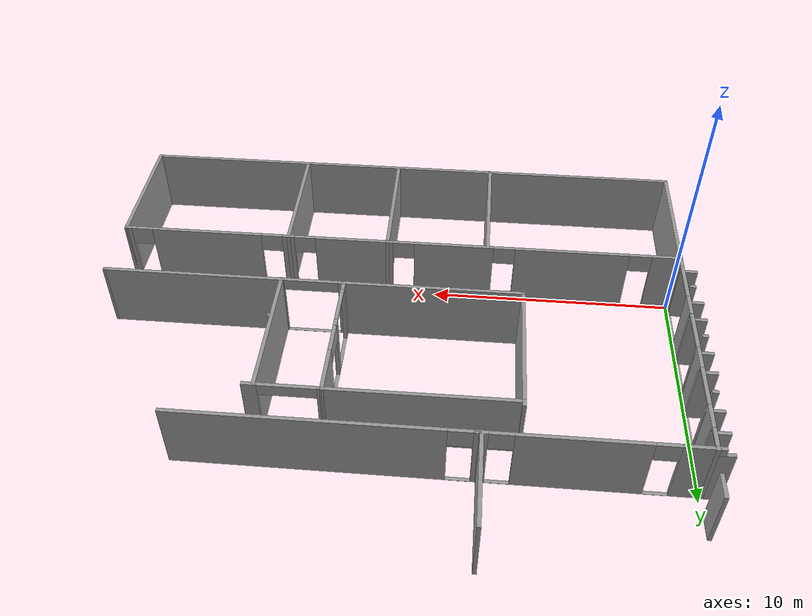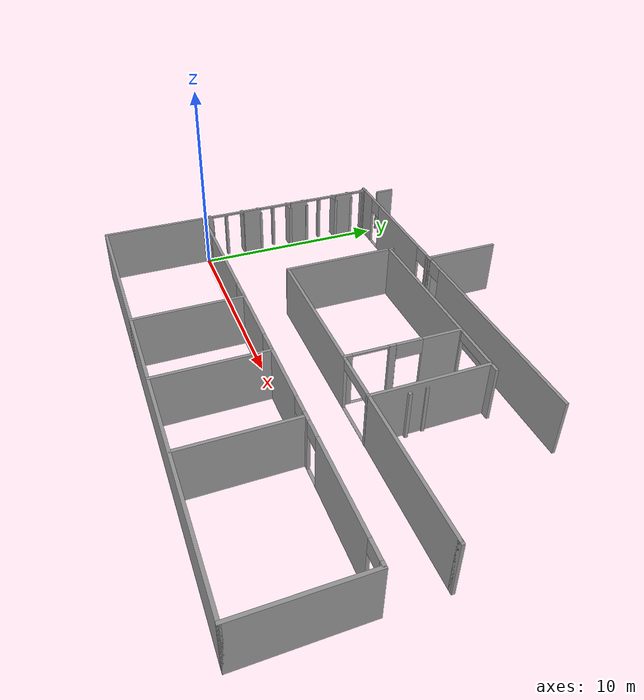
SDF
<sdf version="1.6">
 <world name="default">
  <light name="sun" type="directional">
   <pose>0 0 10 0 -0 0</pose>
   <diffuse>0.8 0.8 0.8 1</diffuse>
   <specular>0.2 0.2 0.2 1</specular>
   <attenuation>
    <range>1000</range>
    <constant>0.9</constant>
    <linear>0.01</linear>
    <quadratic>0.001</quadratic>
   </attenuation>
   <direction>-0.5 0.1 -0.9</direction>
  </light>
  <gravity>0 0 -9.8</gravity>
  <magnetic_field>6e-06 2.3e-05 -4.2e-05</magnetic_field>
  <atmosphere type="adiabatic"/>
  <physics name="default_physics" default="0" type="ode">
   <max_step_size>0.001</max_step_size>
   <real_time_factor>1</real_time_factor>
   <real_time_update_rate>1000</real_time_update_rate>
  </physics>
  <scene><ambient>0.4 0.4 0.4 1</ambient><background>0.7 0.7 0.7 1</background><shadows>1</shadows></scene>
  <audio><device>default</device></audio>
  <spherical_coordinates>
   <surface_model>EARTH_WGS84</surface_model>
   <latitude_deg>0</latitude_deg>
   <longitude_deg>0</longitude_deg>
   <elevation>0</elevation>
   <heading_deg>0</heading_deg>
  </spherical_coordinates>
  <model name="lee-lw">
   <pose>11.3055 4.0077 0 0 -0 0</pose>
   <link name="Wall_0">
    <pose>0.272489 -4.09612 0 0 -0 0</pose>
    <visual name="Wall_0_Visual_0">
     <pose>-11.1322 0 1.4 0 -0 0</pose>
     <geometry><box><size>1.23559 0.15 2.8</size></box></geometry>
     <material>
      <script><uri>file://media/materials/scripts/gazebo.material</uri><name>Gazebo/Grey</name></script>
      <ambient>1 1 1 1</ambient>
     </material>
     <meta><layer>0</layer></meta>
    </visual>
    <collision name="Wall_0_Collision_0">
     <geometry><box><size>1.23559 0.15 2.8</size></box></geometry>
     <pose>-11.1322 0 1.4 0 -0 0</pose>
    </collision>
    <visual name="Wall_0_Visual_1">
     <pose>-7.24619 0 1.4 0 -0 0</pose>
     <geometry><box><size>4.72044 0.15 2.8</size></box></geometry>
     <material>
      <script><uri>file://media/materials/scripts/gazebo.material</uri><name>Gazebo/Grey</name></script>
      <ambient>1 1 1 1</ambient>
     </material>
     <meta><layer>0</layer></meta>
    </visual>
    <collision name="Wall_0_Collision_1">
     <geometry><box><size>4.72044 0.15 2.8</size></box></geometry>
     <pose>-7.24619 0 1.4 0 -0 0</pose>
    </collision>
    <visual name="Wall_0_Visual_2">
     <pose>-2.32879 0 1.4 0 -0 0</pose>
     <geometry><box><size>3.31436 0.15 2.8</size></box></geometry>
     <material>
      <script><uri>file://media/materials/scripts/gazebo.material</uri><name>Gazebo/Grey</name></script>
      <ambient>1 1 1 1</ambient>
     </material>
     <meta><layer>0</layer></meta>
    </visual>
    <collision name="Wall_0_Collision_2">
     <geometry><box><size>3.31436 0.15 2.8</size></box></geometry>
     <pose>-2.32879 0 1.4 0 -0 0</pose>
    </collision>
    <visual name="Wall_0_Visual_3">
     <pose>1.87474 0 1.4 0 -0 0</pose>
     <geometry><box><size>3.2927 0.15 2.8</size></box></geometry>
     <material>
      <script><uri>file://media/materials/scripts/gazebo.material</uri><name>Gazebo/Grey</name></script>
      <ambient>1 1 1 1</ambient>
     </material>
     <meta><layer>0</layer></meta>
    </visual>
    <collision name="Wall_0_Collision_3">
     <geometry><box><size>3.2927 0.15 2.8</size></box></geometry>
     <pose>1.87474 0 1.4 0 -0 0</pose>
    </collision>
    <visual name="Wall_0_Visual_4">
     <pose>4.68143 0 1.4 0 -0 0</pose>
     <geometry><box><size>0.520668 0.15 2.8</size></box></geometry>
     <material>
      <script><uri>file://media/materials/scripts/gazebo.material</uri><name>Gazebo/Grey</name></script>
      <ambient>1 1 1 1</ambient>
     </material>
     <meta><layer>0</layer></meta>
    </visual>
    <collision name="Wall_0_Collision_4">
     <geometry><box><size>0.520668 0.15 2.8</size></box></geometry>
     <pose>4.68143 0 1.4 0 -0 0</pose>
    </collision>
    <visual name="Wall_0_Visual_5">
     <pose>8.19152 0 1.4 0 -0 0</pose>
     <geometry><box><size>4.69951 0.15 2.8</size></box></geometry>
     <material>
      <script><uri>file://media/materials/scripts/gazebo.material</uri><name>Gazebo/Grey</name></script>
      <ambient>1 1 1 1</ambient>
     </material>
     <meta><layer>0</layer></meta>
    </visual>
    <collision name="Wall_0_Collision_5">
     <geometry><box><size>4.69951 0.15 2.8</size></box></geometry>
     <pose>8.19152 0 1.4 0 -0 0</pose>
    </collision>
    <visual name="Wall_0_Visual_6">
     <pose>11.5956 0 1.4 0 -0 0</pose>
     <geometry><box><size>0.308725 0.15 2.8</size></box></geometry>
     <material>
      <script><uri>file://media/materials/scripts/gazebo.material</uri><name>Gazebo/Grey</name></script>
      <ambient>1 1 1 1</ambient>
     </material>
     <meta><layer>0</layer></meta>
    </visual>
    <collision name="Wall_0_Collision_6">
     <geometry><box><size>0.308725 0.15 2.8</size></box></geometry>
     <pose>11.5956 0 1.4 0 -0 0</pose>
    </collision>
    <visual name="Wall_0_Visual_7">
     <pose>-10.0604 0 0 0 -0 0</pose>
     <geometry><box><size>0.908 0.15 0.01</size></box></geometry>
     <material>
      <script><uri>file://media/materials/scripts/gazebo.material</uri><name>Gazebo/Grey</name></script>
      <ambient>1 1 1 1</ambient>
     </material>
     <meta><layer>0</layer></meta>
    </visual>
    <collision name="Wall_0_Collision_7">
     <geometry><box><size>0.908 0.15 0.01</size></box></geometry>
     <pose>-10.0604 0 0 0 -0 0</pose>
    </collision>
    <visual name="Wall_0_Visual_8">
     <pose>-4.43597 0 0 0 -0 0</pose>
     <geometry><box><size>0.9 0.15 0.01</size></box></geometry>
     <material>
      <script><uri>file://media/materials/scripts/gazebo.material</uri><name>Gazebo/Grey</name></script>
      <ambient>1 1 1 1</ambient>
     </material>
     <meta><layer>0</layer></meta>
    </visual>
    <collision name="Wall_0_Collision_8">
     <geometry><box><size>0.9 0.15 0.01</size></box></geometry>
     <pose>-4.43597 0 0 0 -0 0</pose>
    </collision>
    <visual name="Wall_0_Visual_9">
     <pose>-0.221608 0 0 0 -0 0</pose>
     <geometry><box><size>0.9 0.15 0.01</size></box></geometry>
     <material>
      <script><uri>file://media/materials/scripts/gazebo.material</uri><name>Gazebo/Grey</name></script>
      <ambient>1 1 1 1</ambient>
     </material>
     <meta><layer>0</layer></meta>
    </visual>
    <collision name="Wall_0_Collision_9">
     <geometry><box><size>0.9 0.15 0.01</size></box></geometry>
     <pose>-0.221608 0 0 0 -0 0</pose>
    </collision>
    <visual name="Wall_0_Visual_10">
     <pose>3.9711 0 0 0 -0 0</pose>
     <geometry><box><size>0.9 0.15 0.01</size></box></geometry>
     <material>
      <script><uri>file://media/materials/scripts/gazebo.material</uri><name>Gazebo/Grey</name></script>
      <ambient>1 1 1 1</ambient>
     </material>
     <meta><layer>0</layer></meta>
    </visual>
    <collision name="Wall_0_Collision_10">
     <geometry><box><size>0.9 0.15 0.01</size></box></geometry>
     <pose>3.9711 0 0 0 -0 0</pose>
    </collision>
    <visual name="Wall_0_Visual_11">
     <pose>5.39176 0 0 0 -0 0</pose>
     <geometry><box><size>0.9 0.15 0.01</size></box></geometry>
     <material>
      <script><uri>file://media/materials/scripts/gazebo.material</uri><name>Gazebo/Grey</name></script>
      <ambient>1 1 1 1</ambient>
     </material>
     <meta><layer>0</layer></meta>
    </visual>
    <collision name="Wall_0_Collision_11">
     <geometry><box><size>0.9 0.15 0.01</size></box></geometry>
     <pose>5.39176 0 0 0 -0 0</pose>
    </collision>
    <visual name="Wall_0_Visual_12">
     <pose>10.9913 0 0 0 -0 0</pose>
     <geometry><box><size>0.9 0.15 0.01</size></box></geometry>
     <material>
      <script><uri>file://media/materials/scripts/gazebo.material</uri><name>Gazebo/Grey</name></script>
      <ambient>1 1 1 1</ambient>
     </material>
     <meta><layer>0</layer></meta>
    </visual>
    <collision name="Wall_0_Collision_12">
     <geometry><box><size>0.9 0.15 0.01</size></box></geometry>
     <pose>10.9913 0 0 0 -0 0</pose>
    </collision>
    <visual name="Wall_0_Visual_13">
     <pose>-10.0604 0 2.4 0 -0 0</pose>
     <geometry><box><size>0.908 0.15 0.8</size></box></geometry>
     <material>
      <script><uri>file://media/materials/scripts/gazebo.material</uri><name>Gazebo/Grey</name></script>
      <ambient>1 1 1 1</ambient>
     </material>
     <meta><layer>0</layer></meta>
    </visual>
    <collision name="Wall_0_Collision_13">
     <geometry><box><size>0.908 0.15 0.8</size></box></geometry>
     <pose>-10.0604 0 2.4 0 -0 0</pose>
    </collision>
    <visual name="Wall_0_Visual_14">
     <pose>-4.43597 0 2.4 0 -0 0</pose>
     <geometry><box><size>0.9 0.15 0.8</size></box></geometry>
     <material>
      <script><uri>file://media/materials/scripts/gazebo.material</uri><name>Gazebo/Grey</name></script>
      <ambient>1 1 1 1</ambient>
     </material>
     <meta><layer>0</layer></meta>
    </visual>
    <collision name="Wall_0_Collision_14">
     <geometry><box><size>0.9 0.15 0.8</size></box></geometry>
     <pose>-4.43597 0 2.4 0 -0 0</pose>
    </collision>
    <visual name="Wall_0_Visual_15">
     <pose>-0.221608 0 2.4 0 -0 0</pose>
     <geometry><box><size>0.9 0.15 0.8</size></box></geometry>
     <material>
      <script><uri>file://media/materials/scripts/gazebo.material</uri><name>Gazebo/Grey</name></script>
      <ambient>1 1 1 1</ambient>
     </material>
     <meta><layer>0</layer></meta>
    </visual>
    <collision name="Wall_0_Collision_15">
     <geometry><box><size>0.9 0.15 0.8</size></box></geometry>
     <pose>-0.221608 0 2.4 0 -0 0</pose>
    </collision>
    <visual name="Wall_0_Visual_16">
     <pose>3.9711 0 2.4 0 -0 0</pose>
     <geometry><box><size>0.9 0.15 0.8</size></box></geometry>
     <material>
      <script><uri>file://media/materials/scripts/gazebo.material</uri><name>Gazebo/Grey</name></script>
      <ambient>1 1 1 1</ambient>
     </material>
     <meta><layer>0</layer></meta>
    </visual>
    <collision name="Wall_0_Collision_16">
     <geometry><box><size>0.9 0.15 0.8</size></box></geometry>
     <pose>3.9711 0 2.4 0 -0 0</pose>
    </collision>
    <visual name="Wall_0_Visual_17">
     <pose>5.39176 0 2.4 0 -0 0</pose>
     <geometry><box><size>0.9 0.15 0.8</size></box></geometry>
     <material>
      <script><uri>file://media/materials/scripts/gazebo.material</uri><name>Gazebo/Grey</name></script>
      <ambient>1 1 1 1</ambient>
     </material>
     <meta><layer>0</layer></meta>
    </visual>
    <collision name="Wall_0_Collision_17">
     <geometry><box><size>0.9 0.15 0.8</size></box></geometry>
     <pose>5.39176 0 2.4 0 -0 0</pose>
    </collision>
    <visual name="Wall_0_Visual_18">
     <pose>10.9913 0 2.4 0 -0 0</pose>
     <geometry><box><size>0.9 0.15 0.8</size></box></geometry>
     <material>
      <script><uri>file://media/materials/scripts/gazebo.material</uri><name>Gazebo/Grey</name></script>
      <ambient>1 1 1 1</ambient>
     </material>
     <meta><layer>0</layer></meta>
    </visual>
    <collision name="Wall_0_Collision_18">
     <geometry><box><size>0.9 0.15 0.8</size></box></geometry>
     <pose>10.9913 0 2.4 0 -0 0</pose>
    </collision>
   </link>
   <link name="Wall_1">
    <collision name="Wall_1_Collision">
     <geometry><box><size>5.5 0.15 2.8</size></box></geometry>
     <pose>0 0 1.4 0 -0 0</pose>
    </collision>
    <visual name="Wall_1_Visual">
     <pose>0 0 1.4 0 -0 0</pose>
     <geometry><box><size>5.5 0.15 2.8</size></box></geometry>
     <material>
      <script><uri>file://media/materials/scripts/gazebo.material</uri><name>Gazebo/Grey</name></script>
      <ambient>1 1 1 1</ambient>
     </material>
     <meta><layer>0</layer></meta>
    </visual>
    <pose>11.9475 -6.77112 0 0 -0 -1.5708</pose>
   </link>
   <link name="Wall_10">
    <collision name="Wall_10_Collision">
     <geometry><box><size>0.309462 0.15 2.8</size></box></geometry>
     <pose>0 0 1.4 0 -0 0</pose>
    </collision>
    <visual name="Wall_10_Visual">
     <pose>0 0 1.4 0 -0 0</pose>
     <geometry><box><size>0.309462 0.15 2.8</size></box></geometry>
     <material>
      <script><uri>file://media/materials/scripts/gazebo.material</uri><name>Gazebo/Grey</name></script>
      <ambient>1 1 1 1</ambient>
     </material>
     <meta><layer>0</layer></meta>
    </visual>
    <pose>-4.93701 4.29538 0 0 -0 1.57709</pose>
   </link>
   <link name="Wall_12">
    <collision name="Wall_12_Collision">
     <geometry><box><size>5.5 0.15 2.8</size></box></geometry>
     <pose>0 0 1.4 0 -0 0</pose>
    </collision>
    <visual name="Wall_12_Visual">
     <pose>0 0 1.4 0 -0 0</pose>
     <geometry><box><size>5.5 0.15 2.8</size></box></geometry>
     <material>
      <script><uri>file://media/materials/scripts/gazebo.material</uri><name>Gazebo/Grey</name></script>
      <ambient>1 1 1 1</ambient>
     </material>
     <meta><layer>0</layer></meta>
    </visual>
    <pose>4.94049 -6.76612 0 0 -0 -1.5708</pose>
   </link>
   <link name="Wall_14">
    <collision name="Wall_14_Collision">
     <geometry><box><size>5.5 0.15 2.8</size></box></geometry>
     <pose>0 0 1.4 0 -0 0</pose>
    </collision>
    <visual name="Wall_14_Visual">
     <pose>0 0 1.4 0 -0 0</pose>
     <geometry><box><size>5.5 0.15 2.8</size></box></geometry>
     <material>
      <script><uri>file://media/materials/scripts/gazebo.material</uri><name>Gazebo/Grey</name></script>
      <ambient>1 1 1 1</ambient>
     </material>
     <meta><layer>0</layer></meta>
    </visual>
    <pose>0.733489 -6.77012 0 0 -0 -1.5708</pose>
   </link>
   <link name="Wall_16">
    <collision name="Wall_16_Collision">
     <geometry><box><size>5.5 0.15 2.8</size></box></geometry>
     <pose>0 0 1.4 0 -0 0</pose>
    </collision>
    <visual name="Wall_16_Visual">
     <pose>0 0 1.4 0 -0 0</pose>
     <geometry><box><size>5.5 0.15 2.8</size></box></geometry>
     <material>
      <script><uri>file://media/materials/scripts/gazebo.material</uri><name>Gazebo/Grey</name></script>
      <ambient>1 1 1 1</ambient>
     </material>
     <meta><layer>0</layer></meta>
    </visual>
    <pose>-3.46851 -6.77712 0 0 -0 -1.5708</pose>
   </link>
   <link name="Wall_26">
    <pose>-7.47651 5.73288 0 0 -0 0</pose>
    <visual name="Wall_26_Visual_0">
     <pose>-3.5069 0 1.4 0 -0 0</pose>
     <geometry><box><size>1.4862 0.15 2.8</size></box></geometry>
     <material>
      <script><uri>file://media/materials/scripts/gazebo.material</uri><name>Gazebo/Grey</name></script>
      <ambient>1 1 1 1</ambient>
     </material>
     <meta><layer>0</layer></meta>
    </visual>
    <collision name="Wall_26_Collision_0">
     <geometry><box><size>1.4862 0.15 2.8</size></box></geometry>
     <pose>-3.5069 0 1.4 0 -0 0</pose>
    </collision>
    <visual name="Wall_26_Visual_1">
     <pose>0.503557 0 1.4 0 -0 0</pose>
     <geometry><box><size>4.73471 0.15 2.8</size></box></geometry>
     <material>
      <script><uri>file://media/materials/scripts/gazebo.material</uri><name>Gazebo/Grey</name></script>
      <ambient>1 1 1 1</ambient>
     </material>
     <meta><layer>0</layer></meta>
    </visual>
    <collision name="Wall_26_Collision_1">
     <geometry><box><size>4.73471 0.15 2.8</size></box></geometry>
     <pose>0.503557 0 1.4 0 -0 0</pose>
    </collision>
    <visual name="Wall_26_Visual_2">
     <pose>4.01046 0 1.4 0 -0 0</pose>
     <geometry><box><size>0.479087 0.15 2.8</size></box></geometry>
     <material>
      <script><uri>file://media/materials/scripts/gazebo.material</uri><name>Gazebo/Grey</name></script>
      <ambient>1 1 1 1</ambient>
     </material>
     <meta><layer>0</layer></meta>
    </visual>
    <collision name="Wall_26_Collision_2">
     <geometry><box><size>0.479087 0.15 2.8</size></box></geometry>
     <pose>4.01046 0 1.4 0 -0 0</pose>
    </collision>
    <visual name="Wall_26_Visual_3">
     <pose>-2.3138 0 0 0 -0 0</pose>
     <geometry><box><size>0.9 0.15 0.01</size></box></geometry>
     <material>
      <script><uri>file://media/materials/scripts/gazebo.material</uri><name>Gazebo/Grey</name></script>
      <ambient>1 1 1 1</ambient>
     </material>
     <meta><layer>0</layer></meta>
    </visual>
    <collision name="Wall_26_Collision_3">
     <geometry><box><size>0.9 0.15 0.01</size></box></geometry>
     <pose>-2.3138 0 0 0 -0 0</pose>
    </collision>
    <visual name="Wall_26_Visual_4">
     <pose>3.32091 0 0 0 -0 0</pose>
     <geometry><box><size>0.9 0.15 0.01</size></box></geometry>
     <material>
      <script><uri>file://media/materials/scripts/gazebo.material</uri><name>Gazebo/Grey</name></script>
      <ambient>1 1 1 1</ambient>
     </material>
     <meta><layer>0</layer></meta>
    </visual>
    <collision name="Wall_26_Collision_4">
     <geometry><box><size>0.9 0.15 0.01</size></box></geometry>
     <pose>3.32091 0 0 0 -0 0</pose>
    </collision>
    <visual name="Wall_26_Visual_5">
     <pose>-2.3138 0 2.4 0 -0 0</pose>
     <geometry><box><size>0.9 0.15 0.8</size></box></geometry>
     <material>
      <script><uri>file://media/materials/scripts/gazebo.material</uri><name>Gazebo/Grey</name></script>
      <ambient>1 1 1 1</ambient>
     </material>
     <meta><layer>0</layer></meta>
    </visual>
    <collision name="Wall_26_Collision_5">
     <geometry><box><size>0.9 0.15 0.8</size></box></geometry>
     <pose>-2.3138 0 2.4 0 -0 0</pose>
    </collision>
    <visual name="Wall_26_Visual_6">
     <pose>3.32091 0 2.4 0 -0 0</pose>
     <geometry><box><size>0.9 0.15 0.8</size></box></geometry>
     <material>
      <script><uri>file://media/materials/scripts/gazebo.material</uri><name>Gazebo/Grey</name></script>
      <ambient>1 1 1 1</ambient>
     </material>
     <meta><layer>0</layer></meta>
    </visual>
    <collision name="Wall_26_Collision_6">
     <geometry><box><size>0.9 0.15 0.8</size></box></geometry>
     <pose>3.32091 0 2.4 0 -0 0</pose>
    </collision>
   </link>
   <link name="Wall_28">
    <pose>-11.4025 0.828883 0 0 -0 1.5708</pose>
    <visual name="Wall_28_Visual_0">
     <pose>-4.70468 0 1.4 0 -0 0</pose>
     <geometry><box><size>0.59064 0.15 2.8</size></box></geometry>
     <material>
      <script><uri>file://media/materials/scripts/gazebo.material</uri><name>Gazebo/Grey</name></script>
      <ambient>1 1 1 1</ambient>
     </material>
     <meta><layer>0</layer></meta>
    </visual>
    <collision name="Wall_28_Collision_0">
     <geometry><box><size>0.59064 0.15 2.8</size></box></geometry>
     <pose>-4.70468 0 1.4 0 -0 0</pose>
    </collision>
    <visual name="Wall_28_Visual_1">
     <pose>0.29532 0 0.005 0 -0 0</pose>
     <geometry><box><size>9.40936 0.15 0.01</size></box></geometry>
     <material>
      <script><uri>file://media/materials/scripts/gazebo.material</uri><name>Gazebo/Grey</name></script>
      <ambient>1 1 1 1</ambient>
     </material>
     <meta><layer>0</layer></meta>
    </visual>
    <collision name="Wall_28_Collision_1">
     <geometry><box><size>9.40936 0.15 0.01</size></box></geometry>
     <pose>0.29532 0 0.005 0 -0 0</pose>
    </collision>
    <visual name="Wall_28_Visual_2">
     <pose>-2.11968 0 1.405 0 -0 0</pose>
     <geometry><box><size>0.99936 0.15 2.79</size></box></geometry>
     <material>
      <script><uri>file://media/materials/scripts/gazebo.material</uri><name>Gazebo/Grey</name></script>
      <ambient>1 1 1 1</ambient>
     </material>
     <meta><layer>0</layer></meta>
    </visual>
    <collision name="Wall_28_Collision_2">
     <geometry><box><size>0.99936 0.15 2.79</size></box></geometry>
     <pose>-2.11968 0 1.405 0 -0 0</pose>
    </collision>
    <visual name="Wall_28_Visual_3">
     <pose>0.690598 0 1.405 0 -0 0</pose>
     <geometry><box><size>1.0012 0.15 2.79</size></box></geometry>
     <material>
      <script><uri>file://media/materials/scripts/gazebo.material</uri><name>Gazebo/Grey</name></script>
      <ambient>1 1 1 1</ambient>
     </material>
     <meta><layer>0</layer></meta>
    </visual>
    <collision name="Wall_28_Collision_3">
     <geometry><box><size>1.0012 0.15 2.79</size></box></geometry>
     <pose>0.690598 0 1.405 0 -0 0</pose>
    </collision>
    <visual name="Wall_28_Visual_4">
     <pose>3.48268 0 1.405 0 -0 0</pose>
     <geometry><box><size>1.03896 0.15 2.79</size></box></geometry>
     <material>
      <script><uri>file://media/materials/scripts/gazebo.material</uri><name>Gazebo/Grey</name></script>
      <ambient>1 1 1 1</ambient>
     </material>
     <meta><layer>0</layer></meta>
    </visual>
    <collision name="Wall_28_Collision_4">
     <geometry><box><size>1.03896 0.15 2.79</size></box></geometry>
     <pose>3.48268 0 1.405 0 -0 0</pose>
    </collision>
    <visual name="Wall_28_Visual_5">
     <pose>4.90108 0 1.405 0 -0 0</pose>
     <geometry><box><size>0.197842 0.15 2.79</size></box></geometry>
     <material>
      <script><uri>file://media/materials/scripts/gazebo.material</uri><name>Gazebo/Grey</name></script>
      <ambient>1 1 1 1</ambient>
     </material>
     <meta><layer>0</layer></meta>
    </visual>
    <collision name="Wall_28_Collision_5">
     <geometry><box><size>0.197842 0.15 2.79</size></box></geometry>
     <pose>4.90108 0 1.405 0 -0 0</pose>
    </collision>
    <visual name="Wall_28_Visual_6">
     <pose>-3.51436 0 2.755 0 -0 0</pose>
     <geometry><box><size>1.79 0.15 0.09</size></box></geometry>
     <material>
      <script><uri>file://media/materials/scripts/gazebo.material</uri><name>Gazebo/Grey</name></script>
      <ambient>1 1 1 1</ambient>
     </material>
     <meta><layer>0</layer></meta>
    </visual>
    <collision name="Wall_28_Collision_6">
     <geometry><box><size>1.79 0.15 0.09</size></box></geometry>
     <pose>-3.51436 0 2.755 0 -0 0</pose>
    </collision>
    <visual name="Wall_28_Visual_7">
     <pose>-0.715 0 2.755 0 -0 0</pose>
     <geometry><box><size>1.81 0.15 0.09</size></box></geometry>
     <material>
      <script><uri>file://media/materials/scripts/gazebo.material</uri><name>Gazebo/Grey</name></script>
      <ambient>1 1 1 1</ambient>
     </material>
     <meta><layer>0</layer></meta>
    </visual>
    <collision name="Wall_28_Collision_7">
     <geometry><box><size>1.81 0.15 0.09</size></box></geometry>
     <pose>-0.715 0 2.755 0 -0 0</pose>
    </collision>
    <visual name="Wall_28_Visual_8">
     <pose>2.0772 0 2.755 0 -0 0</pose>
     <geometry><box><size>1.772 0.15 0.09</size></box></geometry>
     <material>
      <script><uri>file://media/materials/scripts/gazebo.material</uri><name>Gazebo/Grey</name></script>
      <ambient>1 1 1 1</ambient>
     </material>
     <meta><layer>0</layer></meta>
    </visual>
    <collision name="Wall_28_Collision_8">
     <geometry><box><size>1.772 0.15 0.09</size></box></geometry>
     <pose>2.0772 0 2.755 0 -0 0</pose>
    </collision>
    <visual name="Wall_28_Visual_9">
     <pose>4.40216 0 2.755 0 -0 0</pose>
     <geometry><box><size>0.8 0.15 0.09</size></box></geometry>
     <material>
      <script><uri>file://media/materials/scripts/gazebo.material</uri><name>Gazebo/Grey</name></script>
      <ambient>1 1 1 1</ambient>
     </material>
     <meta><layer>0</layer></meta>
    </visual>
    <collision name="Wall_28_Collision_9">
     <geometry><box><size>0.8 0.15 0.09</size></box></geometry>
     <pose>4.40216 0 2.755 0 -0 0</pose>
    </collision>
    <visual name="Wall_28_Visual_10">
     <pose>-2.11968 0 2.8 0 -0 0</pose>
     <geometry><box><size>0.99936 0.15 0.01</size></box></geometry>
     <material>
      <script><uri>file://media/materials/scripts/gazebo.material</uri><name>Gazebo/Grey</name></script>
      <ambient>1 1 1 1</ambient>
     </material>
     <meta><layer>0</layer></meta>
    </visual>
    <collision name="Wall_28_Collision_10">
     <geometry><box><size>0.99936 0.15 0.01</size></box></geometry>
     <pose>-2.11968 0 2.8 0 -0 0</pose>
    </collision>
    <visual name="Wall_28_Visual_11">
     <pose>0.690598 0 2.8 0 -0 0</pose>
     <geometry><box><size>1.0012 0.15 0.01</size></box></geometry>
     <material>
      <script><uri>file://media/materials/scripts/gazebo.material</uri><name>Gazebo/Grey</name></script>
      <ambient>1 1 1 1</ambient>
     </material>
     <meta><layer>0</layer></meta>
    </visual>
    <collision name="Wall_28_Collision_11">
     <geometry><box><size>1.0012 0.15 0.01</size></box></geometry>
     <pose>0.690598 0 2.8 0 -0 0</pose>
    </collision>
    <visual name="Wall_28_Visual_12">
     <pose>3.48268 0 2.8 0 -0 0</pose>
     <geometry><box><size>1.03896 0.15 0.01</size></box></geometry>
     <material>
      <script><uri>file://media/materials/scripts/gazebo.material</uri><name>Gazebo/Grey</name></script>
      <ambient>1 1 1 1</ambient>
     </material>
     <meta><layer>0</layer></meta>
    </visual>
    <collision name="Wall_28_Collision_12">
     <geometry><box><size>1.03896 0.15 0.01</size></box></geometry>
     <pose>3.48268 0 2.8 0 -0 0</pose>
    </collision>
    <visual name="Wall_28_Visual_13">
     <pose>4.90108 0 2.8 0 -0 0</pose>
     <geometry><box><size>0.197842 0.15 0.01</size></box></geometry>
     <material>
      <script><uri>file://media/materials/scripts/gazebo.material</uri><name>Gazebo/Grey</name></script>
      <ambient>1 1 1 1</ambient>
     </material>
     <meta><layer>0</layer></meta>
    </visual>
    <collision name="Wall_28_Collision_13">
     <geometry><box><size>0.197842 0.15 0.01</size></box></geometry>
     <pose>4.90108 0 2.8 0 -0 0</pose>
    </collision>
   </link>
   <link name="Wall_30">
    <collision name="Wall_30_Collision">
     <geometry><box><size>5.5 0.15 2.8</size></box></geometry>
     <pose>0 0 1.4 0 -0 0</pose>
    </collision>
    <visual name="Wall_30_Visual">
     <pose>0 0 1.4 0 -0 0</pose>
     <geometry><box><size>5.5 0.15 2.8</size></box></geometry>
     <material>
      <script><uri>file://media/materials/scripts/gazebo.material</uri><name>Gazebo/Grey</name></script>
      <ambient>1 1 1 1</ambient>
     </material>
     <meta><layer>0</layer></meta>
    </visual>
    <pose>-11.4025 -6.77112 0 0 -0 -1.5708</pose>
   </link>
   <link name="Wall_31">
    <collision name="Wall_31_Collision">
     <geometry><box><size>23.5 0.15 2.8</size></box></geometry>
     <pose>0 0 1.4 0 -0 0</pose>
    </collision>
    <visual name="Wall_31_Visual">
     <pose>0 0 1.4 0 -0 0</pose>
     <geometry><box><size>23.5 0.15 2.8</size></box></geometry>
     <material>
      <script><uri>file://media/materials/scripts/gazebo.material</uri><name>Gazebo/Grey</name></script>
      <ambient>1 1 1 1</ambient>
     </material>
     <meta><layer>0</layer></meta>
    </visual>
    <pose>0.272489 -9.44612 0 0 -0 0</pose>
   </link>
   <link name="Wall_39">
    <collision name="Wall_39_Collision">
     <geometry><box><size>0.15 0.15 2.5</size></box></geometry>
     <pose>0 0 1.25 0 -0 0</pose>
    </collision>
    <visual name="Wall_39_Visual">
     <pose>0 0 1.25 0 -0 0</pose>
     <geometry><box><size>0.15 0.15 2.5</size></box></geometry>
     <material>
      <script><uri>file://media/materials/scripts/gazebo.material</uri><name>Gazebo/Grey</name></script>
      <ambient>1 1 1 1</ambient>
     </material>
     <meta><layer>0</layer></meta>
    </visual>
    <pose>4.92941 0.399889 0 0 -0 0</pose>
   </link>
   <link name="Wall_42">
    <collision name="Wall_42_Collision">
     <geometry><box><size>0.15 0.15 2.5</size></box></geometry>
     <pose>0 0 1.25 0 -0 0</pose>
    </collision>
    <visual name="Wall_42_Visual">
     <pose>0 0 1.25 0 -0 0</pose>
     <geometry><box><size>0.15 0.15 2.5</size></box></geometry>
     <material>
      <script><uri>file://media/materials/scripts/gazebo.material</uri><name>Gazebo/Grey</name></script>
      <ambient>1 1 1 1</ambient>
     </material>
     <meta><layer>0</layer></meta>
    </visual>
    <pose>4.83282 1.22887 0 0 -0 0</pose>
   </link>
   <link name="Wall_48">
    <collision name="Wall_48_Collision">
     <geometry><box><size>5.75 0.15 2.8</size></box></geometry>
     <pose>0 0 1.4 0 -0 0</pose>
    </collision>
    <visual name="Wall_48_Visual">
     <pose>0 0 1.4 0 -0 0</pose>
     <geometry><box><size>5.75 0.15 2.8</size></box></geometry>
     <material>
      <script><uri>file://media/materials/scripts/gazebo.material</uri><name>Gazebo/Grey</name></script>
      <ambient>1 1 1 1</ambient>
     </material>
     <meta><layer>0</layer></meta>
    </visual>
    <pose>4.75549 1.40188 0 0 -0 1.5708</pose>
   </link>
   <link name="Wall_5">
    <pose>3.48849 -1.38412 0 0 -0 0</pose>
    <visual name="Wall_5_Visual_0">
     <pose>-4.7698 0 1.4 0 -0 0</pose>
     <geometry><box><size>7.4604 0.15 2.8</size></box></geometry>
     <material>
      <script><uri>file://media/materials/scripts/gazebo.material</uri><name>Gazebo/Grey</name></script>
      <ambient>1 1 1 1</ambient>
     </material>
     <meta><layer>0</layer></meta>
    </visual>
    <collision name="Wall_5_Collision_0">
     <geometry><box><size>7.4604 0.15 2.8</size></box></geometry>
     <pose>-4.7698 0 1.4 0 -0 0</pose>
    </collision>
    <visual name="Wall_5_Visual_1">
     <pose>4.8292 0 1.4 0 -0 0</pose>
     <geometry><box><size>7.3416 0.15 2.8</size></box></geometry>
     <material>
      <script><uri>file://media/materials/scripts/gazebo.material</uri><name>Gazebo/Grey</name></script>
      <ambient>1 1 1 1</ambient>
     </material>
     <meta><layer>0</layer></meta>
    </visual>
    <collision name="Wall_5_Collision_1">
     <geometry><box><size>7.3416 0.15 2.8</size></box></geometry>
     <pose>4.8292 0 1.4 0 -0 0</pose>
    </collision>
    <visual name="Wall_5_Visual_2">
     <pose>0.059403 0 0 0 -0 0</pose>
     <geometry><box><size>2.198 0.15 0.01</size></box></geometry>
     <material>
      <script><uri>file://media/materials/scripts/gazebo.material</uri><name>Gazebo/Grey</name></script>
      <ambient>1 1 1 1</ambient>
     </material>
     <meta><layer>0</layer></meta>
    </visual>
    <collision name="Wall_5_Collision_2">
     <geometry><box><size>2.198 0.15 0.01</size></box></geometry>
     <pose>0.059403 0 0 0 -0 0</pose>
    </collision>
    <visual name="Wall_5_Visual_3">
     <pose>0.059403 0 2.549 0 -0 0</pose>
     <geometry><box><size>2.198 0.15 0.502</size></box></geometry>
     <material>
      <script><uri>file://media/materials/scripts/gazebo.material</uri><name>Gazebo/Grey</name></script>
      <ambient>1 1 1 1</ambient>
     </material>
     <meta><layer>0</layer></meta>
    </visual>
    <collision name="Wall_5_Collision_3">
     <geometry><box><size>2.198 0.15 0.502</size></box></geometry>
     <pose>0.059403 0 2.549 0 -0 0</pose>
    </collision>
   </link>
   <link name="Wall_58">
    <collision name="Wall_58_Collision">
     <geometry><box><size>0.25 0.15 2.5</size></box></geometry>
     <pose>0 0 1.25 0 -0 0</pose>
    </collision>
    <visual name="Wall_58_Visual">
     <pose>0 0 1.25 0 -0 0</pose>
     <geometry><box><size>0.25 0.15 2.5</size></box></geometry>
     <material>
      <script><uri>file://media/materials/scripts/gazebo.material</uri><name>Gazebo/Grey</name></script>
      <ambient>1 1 1 1</ambient>
     </material>
     <meta><layer>0</layer></meta>
    </visual>
    <pose>-11.7822 -2.72302 0 0 -0 3.14159</pose>
   </link>
   <link name="Wall_6">
    <collision name="Wall_6_Collision">
     <geometry><box><size>0.25 0.15 2.8</size></box></geometry>
     <pose>0 0 1.4 0 -0 0</pose>
    </collision>
    <visual name="Wall_6_Visual">
     <pose>0 0 1.4 0 -0 0</pose>
     <geometry><box><size>0.25 0.15 2.8</size></box></geometry>
     <material>
      <script><uri>file://media/materials/scripts/gazebo.material</uri><name>Gazebo/Grey</name></script>
      <ambient>1 1 1 1</ambient>
     </material>
     <meta><layer>0</layer></meta>
    </visual>
    <pose>11.9635 -1.38412 0 0 -0 0</pose>
   </link>
   <link name="Wall_60">
    <collision name="Wall_60_Collision">
     <geometry><box><size>0.25 0.15 2.5</size></box></geometry>
     <pose>0 0 1.25 0 -0 0</pose>
    </collision>
    <visual name="Wall_60_Visual">
     <pose>0 0 1.25 0 -0 0</pose>
     <geometry><box><size>0.25 0.15 2.5</size></box></geometry>
     <material>
      <script><uri>file://media/materials/scripts/gazebo.material</uri><name>Gazebo/Grey</name></script>
      <ambient>1 1 1 1</ambient>
     </material>
     <meta><layer>0</layer></meta>
    </visual>
    <pose>-11.8591 0.082311 0 0 -0 3.14159</pose>
   </link>
   <link name="Wall_62">
    <collision name="Wall_62_Collision">
     <geometry><box><size>0.25 0.15 2.5</size></box></geometry>
     <pose>0 0 1.25 0 -0 0</pose>
    </collision>
    <visual name="Wall_62_Visual">
     <pose>0 0 1.25 0 -0 0</pose>
     <geometry><box><size>0.25 0.15 2.5</size></box></geometry>
     <material>
      <script><uri>file://media/materials/scripts/gazebo.material</uri><name>Gazebo/Grey</name></script>
      <ambient>1 1 1 1</ambient>
     </material>
     <meta><layer>0</layer></meta>
    </visual>
    <pose>-11.8079 2.91326 0 0 -0 3.14159</pose>
   </link>
   <link name="Wall_64">
    <pose>2.24849 1.45538 0 0 -0 1.5597</pose>
    <visual name="Wall_64_Visual_0">
     <pose>-2.66186 0 1.4 0 -0 0</pose>
     <geometry><box><size>0.416011 0.15 2.8</size></box></geometry>
     <material>
      <script><uri>file://media/materials/scripts/gazebo.material</uri><name>Gazebo/Grey</name></script>
      <ambient>1 1 1 1</ambient>
     </material>
     <meta><layer>0</layer></meta>
    </visual>
    <collision name="Wall_64_Collision_0">
     <geometry><box><size>0.416011 0.15 2.8</size></box></geometry>
     <pose>-2.66186 0 1.4 0 -0 0</pose>
    </collision>
    <visual name="Wall_64_Visual_1">
     <pose>1.87693 0 1.4 0 -0 0</pose>
     <geometry><box><size>1.98587 0.15 2.8</size></box></geometry>
     <material>
      <script><uri>file://media/materials/scripts/gazebo.material</uri><name>Gazebo/Grey</name></script>
      <ambient>1 1 1 1</ambient>
     </material>
     <meta><layer>0</layer></meta>
    </visual>
    <collision name="Wall_64_Collision_1">
     <geometry><box><size>1.98587 0.15 2.8</size></box></geometry>
     <pose>1.87693 0 1.4 0 -0 0</pose>
    </collision>
    <visual name="Wall_64_Visual_2">
     <pose>-1.42708 0 0.005 0 -0 0</pose>
     <geometry><box><size>2.05355 0.15 0.01</size></box></geometry>
     <material>
      <script><uri>file://media/materials/scripts/gazebo.material</uri><name>Gazebo/Grey</name></script>
      <ambient>1 1 1 1</ambient>
     </material>
     <meta><layer>0</layer></meta>
    </visual>
    <collision name="Wall_64_Collision_2">
     <geometry><box><size>2.05355 0.15 0.01</size></box></geometry>
     <pose>-1.42708 0 0.005 0 -0 0</pose>
    </collision>
    <visual name="Wall_64_Visual_3">
     <pose>-0.400301 0 1.4 0 -0 0</pose>
     <geometry><box><size>0.01 0.15 2.8</size></box></geometry>
     <material>
      <script><uri>file://media/materials/scripts/gazebo.material</uri><name>Gazebo/Grey</name></script>
      <ambient>1 1 1 1</ambient>
     </material>
     <meta><layer>0</layer></meta>
    </visual>
    <collision name="Wall_64_Collision_3">
     <geometry><box><size>0.01 0.15 2.8</size></box></geometry>
     <pose>-0.400301 0 1.4 0 -0 0</pose>
    </collision>
    <visual name="Wall_64_Visual_4">
     <pose>0.241844 0 0 0 -0 0</pose>
     <geometry><box><size>1.28429 0.15 0.01</size></box></geometry>
     <material>
      <script><uri>file://media/materials/scripts/gazebo.material</uri><name>Gazebo/Grey</name></script>
      <ambient>1 1 1 1</ambient>
     </material>
     <meta><layer>0</layer></meta>
    </visual>
    <collision name="Wall_64_Collision_4">
     <geometry><box><size>1.28429 0.15 0.01</size></box></geometry>
     <pose>0.241844 0 0 0 -0 0</pose>
    </collision>
    <visual name="Wall_64_Visual_5">
     <pose>-0.566076 0 1.405 0 -0 0</pose>
     <geometry><box><size>0.331549 0.15 2.79</size></box></geometry>
     <material>
      <script><uri>file://media/materials/scripts/gazebo.material</uri><name>Gazebo/Grey</name></script>
      <ambient>1 1 1 1</ambient>
     </material>
     <meta><layer>0</layer></meta>
    </visual>
    <collision name="Wall_64_Collision_5">
     <geometry><box><size>0.331549 0.15 2.79</size></box></geometry>
     <pose>-0.566076 0 1.405 0 -0 0</pose>
    </collision>
    <visual name="Wall_64_Visual_6">
     <pose>0.241844 0 2.4 0 -0 0</pose>
     <geometry><box><size>1.28429 0.15 0.8</size></box></geometry>
     <material>
      <script><uri>file://media/materials/scripts/gazebo.material</uri><name>Gazebo/Grey</name></script>
      <ambient>1 1 1 1</ambient>
     </material>
     <meta><layer>0</layer></meta>
    </visual>
    <collision name="Wall_64_Collision_6">
     <geometry><box><size>1.28429 0.15 0.8</size></box></geometry>
     <pose>0.241844 0 2.4 0 -0 0</pose>
    </collision>
    <visual name="Wall_64_Visual_7">
     <pose>-1.59285 0 2.755 0 -0 0</pose>
     <geometry><box><size>1.722 0.15 0.09</size></box></geometry>
     <material>
      <script><uri>file://media/materials/scripts/gazebo.material</uri><name>Gazebo/Grey</name></script>
      <ambient>1 1 1 1</ambient>
     </material>
     <meta><layer>0</layer></meta>
    </visual>
    <collision name="Wall_64_Collision_7">
     <geometry><box><size>1.722 0.15 0.09</size></box></geometry>
     <pose>-1.59285 0 2.755 0 -0 0</pose>
    </collision>
    <visual name="Wall_64_Visual_8">
     <pose>-0.566076 0 2.8 0 -0 0</pose>
     <geometry><box><size>0.331549 0.15 0.01</size></box></geometry>
     <material>
      <script><uri>file://media/materials/scripts/gazebo.material</uri><name>Gazebo/Grey</name></script>
      <ambient>1 1 1 1</ambient>
     </material>
     <meta><layer>0</layer></meta>
    </visual>
    <collision name="Wall_64_Collision_8">
     <geometry><box><size>0.331549 0.15 0.01</size></box></geometry>
     <pose>-0.566076 0 2.8 0 -0 0</pose>
    </collision>
   </link>
   <link name="Wall_70">
    <collision name="Wall_70_Collision">
     <geometry><box><size>0.75 0.15 2.5</size></box></geometry>
     <pose>0 0 1.25 0 -0 0</pose>
    </collision>
    <visual name="Wall_70_Visual">
     <pose>0 0 1.25 0 -0 0</pose>
     <geometry><box><size>0.75 0.15 2.5</size></box></geometry>
     <material>
      <script><uri>file://media/materials/scripts/gazebo.material</uri><name>Gazebo/Grey</name></script>
      <ambient>1 1 1 1</ambient>
     </material>
     <meta><layer>0</layer></meta>
    </visual>
    <pose>-11.6992 -0.788749 0 0 -0 3.14159</pose>
   </link>
   <link name="Wall_72">
    <collision name="Wall_72_Collision">
     <geometry><box><size>0.75 0.15 2.5</size></box></geometry>
     <pose>0 0 1.25 0 -0 0</pose>
    </collision>
    <visual name="Wall_72_Visual">
     <pose>0 0 1.25 0 -0 0</pose>
     <geometry><box><size>0.75 0.15 2.5</size></box></geometry>
     <material>
      <script><uri>file://media/materials/scripts/gazebo.material</uri><name>Gazebo/Grey</name></script>
      <ambient>1 1 1 1</ambient>
     </material>
     <meta><layer>0</layer></meta>
    </visual>
    <pose>-11.6864 1.00461 0 0 -0 3.14159</pose>
   </link>
   <link name="Wall_74">
    <collision name="Wall_74_Collision">
     <geometry><box><size>0.75 0.15 2.5</size></box></geometry>
     <pose>0 0 1.25 0 -0 0</pose>
    </collision>
    <visual name="Wall_74_Visual">
     <pose>0 0 1.25 0 -0 0</pose>
     <geometry><box><size>0.75 0.15 2.5</size></box></geometry>
     <material>
      <script><uri>file://media/materials/scripts/gazebo.material</uri><name>Gazebo/Grey</name></script>
      <ambient>1 1 1 1</ambient>
     </material>
     <meta><layer>0</layer></meta>
    </visual>
    <pose>-11.6864 2.00377 0 0 -0 3.14159</pose>
   </link>
   <link name="Wall_76">
    <collision name="Wall_76_Collision">
     <geometry><box><size>0.75 0.15 2.5</size></box></geometry>
     <pose>0 0 1.25 0 -0 0</pose>
    </collision>
    <visual name="Wall_76_Visual">
     <pose>0 0 1.25 0 -0 0</pose>
     <geometry><box><size>0.75 0.15 2.5</size></box></geometry>
     <material>
      <script><uri>file://media/materials/scripts/gazebo.material</uri><name>Gazebo/Grey</name></script>
      <ambient>1 1 1 1</ambient>
     </material>
     <meta><layer>0</layer></meta>
    </visual>
    <pose>-11.6608 3.82275 0 0 -0 3.14159</pose>
   </link>
   <link name="Wall_78">
    <collision name="Wall_78_Collision">
     <geometry><box><size>0.75 0.15 2.5</size></box></geometry>
     <pose>0 0 1.25 0 -0 0</pose>
    </collision>
    <visual name="Wall_78_Visual">
     <pose>0 0 1.25 0 -0 0</pose>
     <geometry><box><size>0.75 0.15 2.5</size></box></geometry>
     <material>
      <script><uri>file://media/materials/scripts/gazebo.material</uri><name>Gazebo/Grey</name></script>
      <ambient>1 1 1 1</ambient>
     </material>
     <meta><layer>0</layer></meta>
    </visual>
    <pose>-11.6992 4.80909 0 0 -0 3.14159</pose>
   </link>
   <link name="Wall_8">
    <collision name="Wall_8_Collision">
     <geometry><box><size>5.75 0.15 2.8</size></box></geometry>
     <pose>0 0 1.4 0 -0 0</pose>
    </collision>
    <visual name="Wall_8_Visual">
     <pose>0 0 1.4 0 -0 0</pose>
     <geometry><box><size>5.75 0.15 2.8</size></box></geometry>
     <material>
      <script><uri>file://media/materials/scripts/gazebo.material</uri><name>Gazebo/Grey</name></script>
      <ambient>1 1 1 1</ambient>
     </material>
     <meta><layer>0</layer></meta>
    </visual>
    <pose>-4.93651 1.41588 0 0 -0 1.5708</pose>
   </link>
   <link name="Wall_80">
    <collision name="Wall_80_Collision">
     <geometry><box><size>0.75 0.15 2.5</size></box></geometry>
     <pose>0 0 1.25 0 -0 0</pose>
    </collision>
    <visual name="Wall_80_Visual">
     <pose>0 0 1.25 0 -0 0</pose>
     <geometry><box><size>0.75 0.15 2.5</size></box></geometry>
     <material>
      <script><uri>file://media/materials/scripts/gazebo.material</uri><name>Gazebo/Grey</name></script>
      <ambient>1 1 1 1</ambient>
     </material>
     <meta><layer>0</layer></meta>
    </visual>
    <pose>-11.7135 -1.75425 0 0 -0 3.14159</pose>
   </link>
   <link name="Wall_82">
    <collision name="Wall_82_Collision">
     <geometry><box><size>0.75 0.15 2.5</size></box></geometry>
     <pose>0 0 1.25 0 -0 0</pose>
    </collision>
    <visual name="Wall_82_Visual">
     <pose>0 0 1.25 0 -0 0</pose>
     <geometry><box><size>0.75 0.15 2.5</size></box></geometry>
     <material>
      <script><uri>file://media/materials/scripts/gazebo.material</uri><name>Gazebo/Grey</name></script>
      <ambient>1 1 1 1</ambient>
     </material>
     <meta><layer>0</layer></meta>
    </visual>
    <pose>-11.7135 -3.62027 0 0 -0 3.14159</pose>
   </link>
   <link name="Wall_84">
    <collision name="Wall_84_Collision">
     <geometry><box><size>0.75 0.15 2.5</size></box></geometry>
     <pose>0 0 1.25 0 -0 0</pose>
    </collision>
    <visual name="Wall_84_Visual">
     <pose>0 0 1.25 0 -0 0</pose>
     <geometry><box><size>0.75 0.15 2.5</size></box></geometry>
     <material>
      <script><uri>file://media/materials/scripts/gazebo.material</uri><name>Gazebo/Grey</name></script>
      <ambient>1 1 1 1</ambient>
     </material>
     <meta><layer>0</layer></meta>
    </visual>
    <pose>-11.7025 5.75388 0 0 -0 3.14159</pose>
   </link>
   <link name="Wall_86">
    <pose>2.24849 5.73288 0 0 -0 0</pose>
    <visual name="Wall_86_Visual_0">
     <pose>-5.53626 0 1.4 0 -0 0</pose>
     <geometry><box><size>0.177486 0.15 2.8</size></box></geometry>
     <material>
      <script><uri>file://media/materials/scripts/gazebo.material</uri><name>Gazebo/Grey</name></script>
      <ambient>1 1 1 1</ambient>
     </material>
     <meta><layer>0</layer></meta>
    </visual>
    <collision name="Wall_86_Collision_0">
     <geometry><box><size>0.177486 0.15 2.8</size></box></geometry>
     <pose>-5.53626 0 1.4 0 -0 0</pose>
    </collision>
    <visual name="Wall_86_Visual_1">
     <pose>0.538743 0 1.4 0 -0 0</pose>
     <geometry><box><size>10.1725 0.15 2.8</size></box></geometry>
     <material>
      <script><uri>file://media/materials/scripts/gazebo.material</uri><name>Gazebo/Grey</name></script>
      <ambient>1 1 1 1</ambient>
     </material>
     <meta><layer>0</layer></meta>
    </visual>
    <collision name="Wall_86_Collision_1">
     <geometry><box><size>10.1725 0.15 2.8</size></box></geometry>
     <pose>0.538743 0 1.4 0 -0 0</pose>
    </collision>
    <visual name="Wall_86_Visual_2">
     <pose>-4.99751 0 0 0 -0 0</pose>
     <geometry><box><size>0.9 0.15 0.01</size></box></geometry>
     <material>
      <script><uri>file://media/materials/scripts/gazebo.material</uri><name>Gazebo/Grey</name></script>
      <ambient>1 1 1 1</ambient>
     </material>
     <meta><layer>0</layer></meta>
    </visual>
    <collision name="Wall_86_Collision_2">
     <geometry><box><size>0.9 0.15 0.01</size></box></geometry>
     <pose>-4.99751 0 0 0 -0 0</pose>
    </collision>
    <visual name="Wall_86_Visual_3">
     <pose>-4.99751 0 2.4 0 -0 0</pose>
     <geometry><box><size>0.9 0.15 0.8</size></box></geometry>
     <material>
      <script><uri>file://media/materials/scripts/gazebo.material</uri><name>Gazebo/Grey</name></script>
      <ambient>1 1 1 1</ambient>
     </material>
     <meta><layer>0</layer></meta>
    </visual>
    <collision name="Wall_86_Collision_3">
     <geometry><box><size>0.9 0.15 0.8</size></box></geometry>
     <pose>-4.99751 0 2.4 0 -0 0</pose>
    </collision>
   </link>
   <link name="Wall_88">
    <collision name="Wall_88_Collision">
     <geometry><box><size>7.36585 0.15 2.8</size></box></geometry>
     <pose>0 0 1.4 0 -0 0</pose>
    </collision>
    <visual name="Wall_88_Visual">
     <pose>0 0 1.4 0 -0 0</pose>
     <geometry><box><size>7.36585 0.15 2.8</size></box></geometry>
     <material>
      <script><uri>file://media/materials/scripts/gazebo.material</uri><name>Gazebo/Grey</name></script>
      <ambient>1 1 1 1</ambient>
     </material>
     <meta><layer>0</layer></meta>
    </visual>
    <pose>-1.32851 4.23288 0 0 -0 0.004712</pose>
   </link>
   <link name="Wall_90">
    <pose>3.70449 4.24988 0 0 -0 0</pose>
    <visual name="Wall_90_Visual_0">
     <pose>-1.378 0 1.4 0 -0 0</pose>
     <geometry><box><size>0.243994 0.15 2.8</size></box></geometry>
     <material>
      <script><uri>file://media/materials/scripts/gazebo.material</uri><name>Gazebo/Grey</name></script>
      <ambient>1 1 1 1</ambient>
     </material>
     <meta><layer>0</layer></meta>
    </visual>
    <collision name="Wall_90_Collision_0">
     <geometry><box><size>0.243994 0.15 2.8</size></box></geometry>
     <pose>-1.378 0 1.4 0 -0 0</pose>
    </collision>
    <visual name="Wall_90_Visual_1">
     <pose>1.217 0 1.4 0 -0 0</pose>
     <geometry><box><size>0.566006 0.15 2.8</size></box></geometry>
     <material>
      <script><uri>file://media/materials/scripts/gazebo.material</uri><name>Gazebo/Grey</name></script>
      <ambient>1 1 1 1</ambient>
     </material>
     <meta><layer>0</layer></meta>
    </visual>
    <collision name="Wall_90_Collision_1">
     <geometry><box><size>0.566006 0.15 2.8</size></box></geometry>
     <pose>1.217 0 1.4 0 -0 0</pose>
    </collision>
    <visual name="Wall_90_Visual_2">
     <pose>-0.161006 0 0 0 -0 0</pose>
     <geometry><box><size>2.19 0.15 0.01</size></box></geometry>
     <material>
      <script><uri>file://media/materials/scripts/gazebo.material</uri><name>Gazebo/Grey</name></script>
      <ambient>1 1 1 1</ambient>
     </material>
     <meta><layer>0</layer></meta>
    </visual>
    <collision name="Wall_90_Collision_2">
     <geometry><box><size>2.19 0.15 0.01</size></box></geometry>
     <pose>-0.161006 0 0 0 -0 0</pose>
    </collision>
    <visual name="Wall_90_Visual_3">
     <pose>-0.161006 0 2.549 0 -0 0</pose>
     <geometry><box><size>2.19 0.15 0.502</size></box></geometry>
     <material>
      <script><uri>file://media/materials/scripts/gazebo.material</uri><name>Gazebo/Grey</name></script>
      <ambient>1 1 1 1</ambient>
     </material>
     <meta><layer>0</layer></meta>
    </visual>
    <collision name="Wall_90_Collision_3">
     <geometry><box><size>2.19 0.15 0.502</size></box></geometry>
     <pose>-0.161006 0 2.549 0 -0 0</pose>
    </collision>
   </link>
   <link name="Wall_94">
    <collision name="Wall_94_Collision">
     <geometry><box><size>3.90727 0.15 2.8</size></box></geometry>
     <pose>0 0 1.4 0 -0 0</pose>
    </collision>
    <visual name="Wall_94_Visual">
     <pose>0 0 1.4 0 -0 0</pose>
     <geometry><box><size>3.90727 0.15 2.8</size></box></geometry>
     <material>
      <script><uri>file://media/materials/scripts/gazebo.material</uri><name>Gazebo/Grey</name></script>
      <ambient>1 1 1 1</ambient>
     </material>
     <meta><layer>0</layer></meta>
    </visual>
    <pose>-3.47601 7.57338 0 0 -0 -1.56947</pose>
   </link>
   <link name="Wall_96">
    <collision name="Wall_96_Collision">
     <geometry><box><size>1 0.15 2.5</size></box></geometry>
     <pose>0 0 1.25 0 -0 0</pose>
    </collision>
    <visual name="Wall_96_Visual">
     <pose>0 0 1.25 0 -0 0</pose>
     <geometry><box><size>1 0.15 2.5</size></box></geometry>
     <material>
      <script><uri>file://media/materials/scripts/gazebo.material</uri><name>Gazebo/Grey</name></script>
      <ambient>1 1 1 1</ambient>
     </material>
     <meta><layer>0</layer></meta>
    </visual>
    <pose>-11.4585 7.04023 0 0 -0 1.5708</pose>
   </link>
   <static>1</static>
  </model>
 </world>
</sdf>
